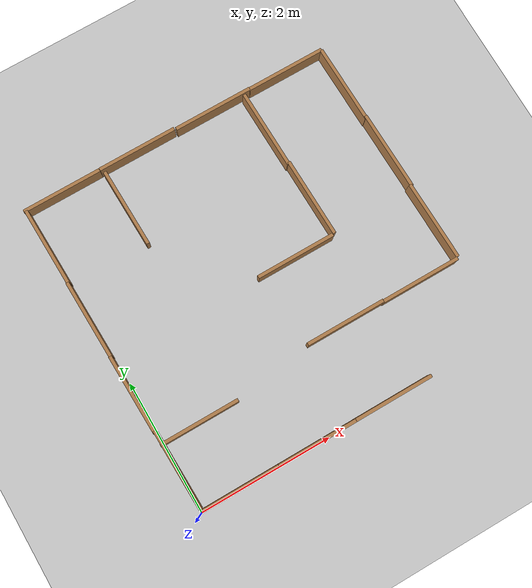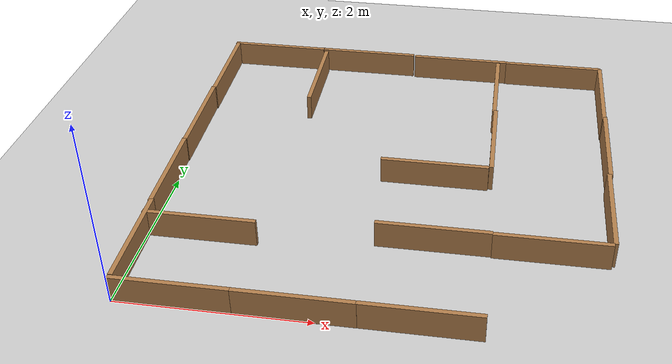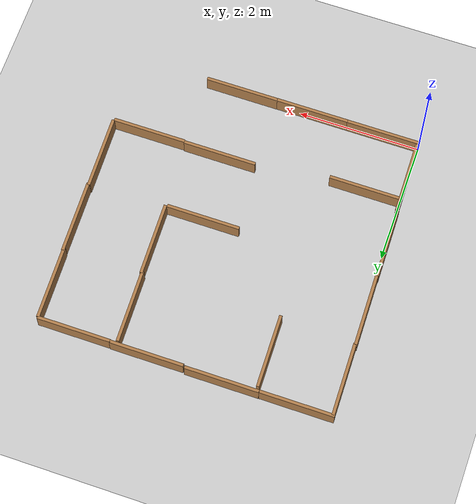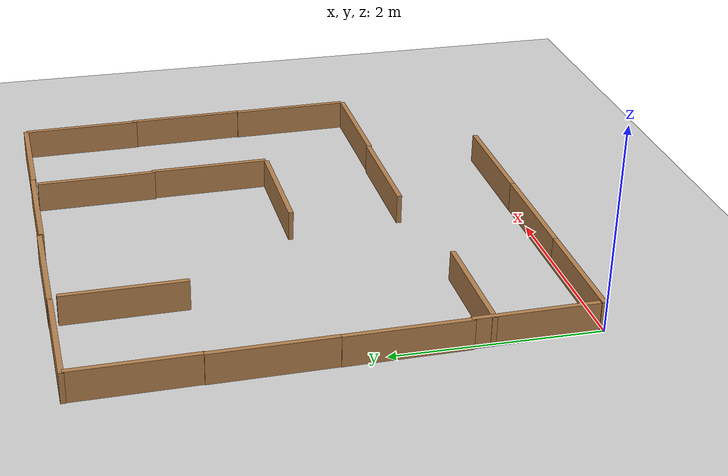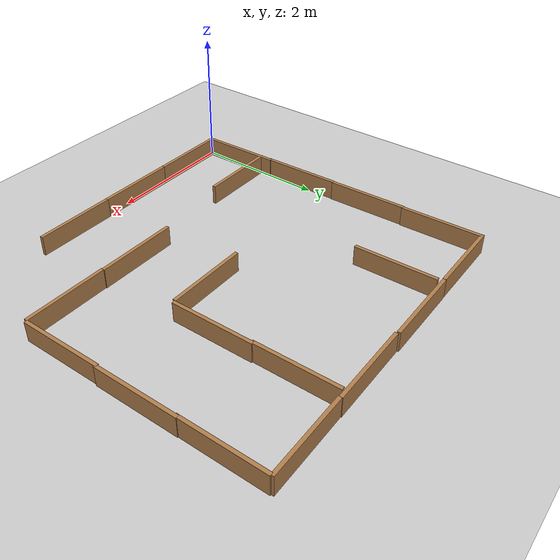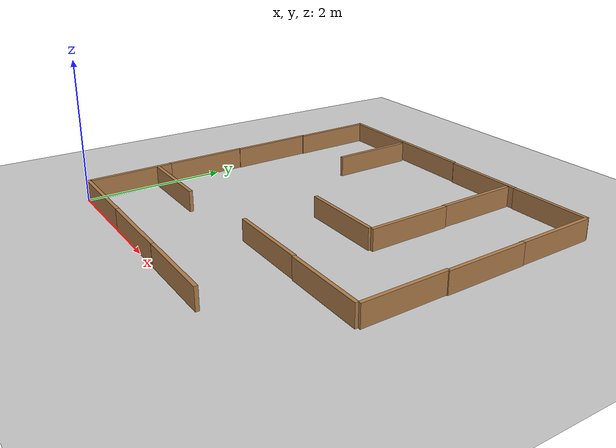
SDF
<sdf version="1.7">
 <world name="default">
  <light name="sun" type="directional">
   <pose>0 0 10 0 -0 0</pose>
   <diffuse>0.8 0.8 0.8 1</diffuse>
   <specular>0.2 0.2 0.2 1</specular>
   <attenuation>
    <range>1000</range>
    <constant>0.9</constant>
    <linear>0.01</linear>
    <quadratic>0.001</quadratic>
   </attenuation>
   <direction>-0.5 0.1 -0.9</direction>
   <spot><inner_angle>0</inner_angle><outer_angle>0</outer_angle><falloff>0</falloff></spot>
  </light>
  <model name="ground_plane">
   <static>1</static>
   <link name="link">
    <collision name="collision">
     <geometry><plane><normal>0 0 1</normal><size>100 100</size></plane></geometry>
     <surface>
      <contact><collide_bitmask>65535</collide_bitmask></contact>
      <friction><ode><mu>100</mu><mu2>50</mu2></ode></friction>
     </surface>
    </collision>
    <visual name="visual">
     <cast_shadows>0</cast_shadows>
     <geometry><plane><normal>0 0 1</normal><size>100 100</size></plane></geometry>
     <material>
      <script><uri>file://media/materials/scripts/gazebo.material</uri><name>Gazebo/Grey</name></script>
     </material>
    </visual>
   </link>
  </model>
  <gravity>0 0 -9.8</gravity>
  <magnetic_field>6e-06 2.3e-05 -4.2e-05</magnetic_field>
  <atmosphere type="adiabatic"/>
  <physics type="ode">
   <max_step_size>0.001</max_step_size>
   <real_time_factor>1</real_time_factor>
   <real_time_update_rate>1000</real_time_update_rate>
  </physics>
  <scene><ambient>0.4 0.4 0.4 1</ambient><background>0.7 0.7 0.7 1</background><shadows>1</shadows></scene>
  <audio><device>default</device></audio>
  <spherical_coordinates>
   <surface_model>EARTH_WGS84</surface_model>
   <latitude_deg>0</latitude_deg>
   <longitude_deg>0</longitude_deg>
   <elevation>0</elevation>
   <heading_deg>0</heading_deg>
  </spherical_coordinates>
  <model name="wall120cm">
   <pose>0.603908 0.022287 0 0 -0 0</pose>
   <link name="Wall_11">
    <collision name="Wall_11_Collision">
     <geometry><box><size>1.2 0.05 0.3</size></box></geometry>
     <pose>0 0 0.15 0 -0 0</pose>
    </collision>
    <visual name="Wall_11_Visual">
     <pose>0 0 0.15 0 -0 0</pose>
     <geometry><box><size>1.2 0.05 0.3</size></box></geometry>
     <material>
      <script><uri>file://media/materials/scripts/gazebo.material</uri><name>Gazebo/Wood</name></script>
      <ambient>1 1 1 1</ambient>
     </material>
     <meta><layer>0</layer></meta>
    </visual>
   </link>
   <static>1</static>
  </model>
  <model name="wall120cm_0">
   <pose>1.7991 0.021891 0 0 -0 0</pose>
   <link name="Wall_11">
    <collision name="Wall_11_Collision">
     <geometry><box><size>1.2 0.05 0.3</size></box></geometry>
     <pose>0 0 0.15 0 -0 0</pose>
    </collision>
    <visual name="Wall_11_Visual">
     <pose>0 0 0.15 0 -0 0</pose>
     <geometry><box><size>1.2 0.05 0.3</size></box></geometry>
     <material>
      <script><uri>file://media/materials/scripts/gazebo.material</uri><name>Gazebo/Wood</name></script>
      <ambient>1 1 1 1</ambient>
     </material>
     <meta><layer>0</layer></meta>
    </visual>
   </link>
   <static>1</static>
  </model>
  <model name="wall120cm_1">
   <pose>2.99015 0.023036 0 0 -0 0</pose>
   <link name="Wall_11">
    <collision name="Wall_11_Collision">
     <geometry><box><size>1.2 0.05 0.3</size></box></geometry>
     <pose>0 0 0.15 0 -0 0</pose>
    </collision>
    <visual name="Wall_11_Visual">
     <pose>0 0 0.15 0 -0 0</pose>
     <geometry><box><size>1.2 0.05 0.3</size></box></geometry>
     <material>
      <script><uri>file://media/materials/scripts/gazebo.material</uri><name>Gazebo/Wood</name></script>
      <ambient>1 1 1 1</ambient>
     </material>
     <meta><layer>0</layer></meta>
    </visual>
   </link>
   <static>1</static>
  </model>
  <model name="wall120cm_2">
   <pose>2.96305 1.22257 0 0 -0 0</pose>
   <link name="Wall_11">
    <collision name="Wall_11_Collision">
     <geometry><box><size>1.2 0.05 0.3</size></box></geometry>
     <pose>0 0 0.15 0 -0 0</pose>
    </collision>
    <visual name="Wall_11_Visual">
     <pose>0 0 0.15 0 -0 0</pose>
     <geometry><box><size>1.2 0.05 0.3</size></box></geometry>
     <material>
      <script><uri>file://media/materials/scripts/gazebo.material</uri><name>Gazebo/Wood</name></script>
      <ambient>1 1 1 1</ambient>
     </material>
     <meta><layer>0</layer></meta>
    </visual>
   </link>
   <static>1</static>
  </model>
  <model name="wall120cm_1_clone">
   <pose>0.006117 0.654339 0 0.012369 -0.001594 1.59387</pose>
   <link name="Wall_11">
    <collision name="Wall_11_Collision">
     <geometry><box><size>1.2 0.05 0.3</size></box></geometry>
     <pose>0 0 0.15 0 -0 0</pose>
    </collision>
    <visual name="Wall_11_Visual">
     <pose>0 0 0.15 0 -0 0</pose>
     <geometry><box><size>1.2 0.05 0.3</size></box></geometry>
     <material>
      <script><uri>file://media/materials/scripts/gazebo.material</uri><name>Gazebo/Wood</name></script>
      <ambient>1 1 1 1</ambient>
     </material>
     <meta><layer>0</layer></meta>
    </visual>
   </link>
   <static>1</static>
  </model>
  <model name="wall120cm_1_clone_0">
   <pose>-0.030967 1.82256 0 0.012369 -0.001594 1.59387</pose>
   <link name="Wall_11">
    <collision name="Wall_11_Collision">
     <geometry><box><size>1.2 0.05 0.3</size></box></geometry>
     <pose>0 0 0.15 0 -0 0</pose>
    </collision>
    <visual name="Wall_11_Visual">
     <pose>0 0 0.15 0 -0 0</pose>
     <geometry><box><size>1.2 0.05 0.3</size></box></geometry>
     <material>
      <script><uri>file://media/materials/scripts/gazebo.material</uri><name>Gazebo/Wood</name></script>
      <ambient>1 1 1 1</ambient>
     </material>
     <meta><layer>0</layer></meta>
    </visual>
   </link>
   <static>1</static>
  </model>
  <model name="wall120cm_1_clone_1">
   <pose>-0.051854 3.00789 0 0.012369 -0.001594 1.59387</pose>
   <link name="Wall_11">
    <collision name="Wall_11_Collision">
     <geometry><box><size>1.2 0.05 0.3</size></box></geometry>
     <pose>0 0 0.15 0 -0 0</pose>
    </collision>
    <visual name="Wall_11_Visual">
     <pose>0 0 0.15 0 -0 0</pose>
     <geometry><box><size>1.2 0.05 0.3</size></box></geometry>
     <material>
      <script><uri>file://media/materials/scripts/gazebo.material</uri><name>Gazebo/Wood</name></script>
      <ambient>1 1 1 1</ambient>
     </material>
     <meta><layer>0</layer></meta>
    </visual>
   </link>
   <static>1</static>
  </model>
  <model name="wall120cm_1_clone_2">
   <pose>-0.069005 4.18736 0 0.012369 -0.001594 1.59387</pose>
   <link name="Wall_11">
    <collision name="Wall_11_Collision">
     <geometry><box><size>1.2 0.05 0.3</size></box></geometry>
     <pose>0 0 0.15 0 -0 0</pose>
    </collision>
    <visual name="Wall_11_Visual">
     <pose>0 0 0.15 0 -0 0</pose>
     <geometry><box><size>1.2 0.05 0.3</size></box></geometry>
     <material>
      <script><uri>file://media/materials/scripts/gazebo.material</uri><name>Gazebo/Wood</name></script>
      <ambient>1 1 1 1</ambient>
     </material>
     <meta><layer>0</layer></meta>
    </visual>
   </link>
   <static>1</static>
  </model>
  <model name="wall120cm_3">
   <pose>0.489509 4.79403 0 0 -0 0</pose>
   <link name="Wall_11">
    <collision name="Wall_11_Collision">
     <geometry><box><size>1.2 0.05 0.3</size></box></geometry>
     <pose>0 0 0.15 0 -0 0</pose>
    </collision>
    <visual name="Wall_11_Visual">
     <pose>0 0 0.15 0 -0 0</pose>
     <geometry><box><size>1.2 0.05 0.3</size></box></geometry>
     <material>
      <script><uri>file://media/materials/scripts/gazebo.material</uri><name>Gazebo/Wood</name></script>
      <ambient>1 1 1 1</ambient>
     </material>
     <meta><layer>0</layer></meta>
    </visual>
   </link>
   <static>1</static>
  </model>
  <model name="wall120cm_2_clone">
   <pose>4.16049 1.21107 0 0 -0 0</pose>
   <link name="Wall_11">
    <collision name="Wall_11_Collision">
     <geometry><box><size>1.2 0.05 0.3</size></box></geometry>
     <pose>0 0 0.15 0 -0 0</pose>
    </collision>
    <visual name="Wall_11_Visual">
     <pose>0 0 0.15 0 -0 0</pose>
     <geometry><box><size>1.2 0.05 0.3</size></box></geometry>
     <material>
      <script><uri>file://media/materials/scripts/gazebo.material</uri><name>Gazebo/Wood</name></script>
      <ambient>1 1 1 1</ambient>
     </material>
     <meta><layer>0</layer></meta>
    </visual>
   </link>
   <static>1</static>
  </model>
  <model name="wall120cm_1_clone_clone">
   <pose>4.75634 1.82838 0 0.012369 -0.001594 1.59387</pose>
   <link name="Wall_11">
    <collision name="Wall_11_Collision">
     <geometry><box><size>1.2 0.05 0.3</size></box></geometry>
     <pose>0 0 0.15 0 -0 0</pose>
    </collision>
    <visual name="Wall_11_Visual">
     <pose>0 0 0.15 0 -0 0</pose>
     <geometry><box><size>1.2 0.05 0.3</size></box></geometry>
     <material>
      <script><uri>file://media/materials/scripts/gazebo.material</uri><name>Gazebo/Wood</name></script>
      <ambient>1 1 1 1</ambient>
     </material>
     <meta><layer>0</layer></meta>
    </visual>
   </link>
   <static>1</static>
  </model>
  <model name="wall120cm_1_clone_clone_0">
   <pose>4.7437 3.0048 0 0.012369 -0.001594 1.59387</pose>
   <link name="Wall_11">
    <collision name="Wall_11_Collision">
     <geometry><box><size>1.2 0.05 0.3</size></box></geometry>
     <pose>0 0 0.15 0 -0 0</pose>
    </collision>
    <visual name="Wall_11_Visual">
     <pose>0 0 0.15 0 -0 0</pose>
     <geometry><box><size>1.2 0.05 0.3</size></box></geometry>
     <material>
      <script><uri>file://media/materials/scripts/gazebo.material</uri><name>Gazebo/Wood</name></script>
      <ambient>1 1 1 1</ambient>
     </material>
     <meta><layer>0</layer></meta>
    </visual>
   </link>
   <static>1</static>
  </model>
  <model name="wall120cm_4">
   <pose>1.69319 4.79737 0 0 -0 0</pose>
   <link name="Wall_11">
    <collision name="Wall_11_Collision">
     <geometry><box><size>1.2 0.05 0.3</size></box></geometry>
     <pose>0 0 0.15 0 -0 0</pose>
    </collision>
    <visual name="Wall_11_Visual">
     <pose>0 0 0.15 0 -0 0</pose>
     <geometry><box><size>1.2 0.05 0.3</size></box></geometry>
     <material>
      <script><uri>file://media/materials/scripts/gazebo.material</uri><name>Gazebo/Wood</name></script>
      <ambient>1 1 1 1</ambient>
     </material>
     <meta><layer>0</layer></meta>
    </visual>
   </link>
   <static>1</static>
  </model>
  <model name="wall120cm_5">
   <pose>2.91488 4.77999 0 0 -0 0</pose>
   <link name="Wall_11">
    <collision name="Wall_11_Collision">
     <geometry><box><size>1.2 0.05 0.3</size></box></geometry>
     <pose>0 0 0.15 0 -0 0</pose>
    </collision>
    <visual name="Wall_11_Visual">
     <pose>0 0 0.15 0 -0 0</pose>
     <geometry><box><size>1.2 0.05 0.3</size></box></geometry>
     <material>
      <script><uri>file://media/materials/scripts/gazebo.material</uri><name>Gazebo/Wood</name></script>
      <ambient>1 1 1 1</ambient>
     </material>
     <meta><layer>0</layer></meta>
    </visual>
   </link>
   <static>1</static>
  </model>
  <model name="wall120cm_6">
   <pose>4.10416 4.77273 0 0 -0 0</pose>
   <link name="Wall_11">
    <collision name="Wall_11_Collision">
     <geometry><box><size>1.2 0.05 0.3</size></box></geometry>
     <pose>0 0 0.15 0 -0 0</pose>
    </collision>
    <visual name="Wall_11_Visual">
     <pose>0 0 0.15 0 -0 0</pose>
     <geometry><box><size>1.2 0.05 0.3</size></box></geometry>
     <material>
      <script><uri>file://media/materials/scripts/gazebo.material</uri><name>Gazebo/Wood</name></script>
      <ambient>1 1 1 1</ambient>
     </material>
     <meta><layer>0</layer></meta>
    </visual>
   </link>
   <static>1</static>
  </model>
  <model name="wall120cm_1_clone_clone_1">
   <pose>4.70848 4.16397 0 0.012369 -0.001594 1.59387</pose>
   <link name="Wall_11">
    <collision name="Wall_11_Collision">
     <geometry><box><size>1.2 0.05 0.3</size></box></geometry>
     <pose>0 0 0.15 0 -0 0</pose>
    </collision>
    <visual name="Wall_11_Visual">
     <pose>0 0 0.15 0 -0 0</pose>
     <geometry><box><size>1.2 0.05 0.3</size></box></geometry>
     <material>
      <script><uri>file://media/materials/scripts/gazebo.material</uri><name>Gazebo/Wood</name></script>
      <ambient>1 1 1 1</ambient>
     </material>
     <meta><layer>0</layer></meta>
    </visual>
   </link>
   <static>1</static>
  </model>
  <model name="wall120cm_1_clone_clone_2">
   <pose>3.41281 4.13868 0 0.012369 -0.001594 1.59387</pose>
   <link name="Wall_11">
    <collision name="Wall_11_Collision">
     <geometry><box><size>1.2 0.05 0.3</size></box></geometry>
     <pose>0 0 0.15 0 -0 0</pose>
    </collision>
    <visual name="Wall_11_Visual">
     <pose>0 0 0.15 0 -0 0</pose>
     <geometry><box><size>1.2 0.05 0.3</size></box></geometry>
     <material>
      <script><uri>file://media/materials/scripts/gazebo.material</uri><name>Gazebo/Wood</name></script>
      <ambient>1 1 1 1</ambient>
     </material>
     <meta><layer>0</layer></meta>
    </visual>
   </link>
   <static>1</static>
  </model>
  <model name="wall120cm_1_clone_clone_3">
   <pose>3.45607 2.96549 0 0.012369 -0.001594 1.59387</pose>
   <link name="Wall_11">
    <collision name="Wall_11_Collision">
     <geometry><box><size>1.2 0.05 0.3</size></box></geometry>
     <pose>0 0 0.15 0 -0 0</pose>
    </collision>
    <visual name="Wall_11_Visual">
     <pose>0 0 0.15 0 -0 0</pose>
     <geometry><box><size>1.2 0.05 0.3</size></box></geometry>
     <material>
      <script><uri>file://media/materials/scripts/gazebo.material</uri><name>Gazebo/Wood</name></script>
      <ambient>1 1 1 1</ambient>
     </material>
     <meta><layer>0</layer></meta>
    </visual>
   </link>
   <static>1</static>
  </model>
  <model name="wall120cm_7">
   <pose>2.84547 2.35947 0 0 -0 0</pose>
   <link name="Wall_11">
    <collision name="Wall_11_Collision">
     <geometry><box><size>1.2 0.05 0.3</size></box></geometry>
     <pose>0 0 0.15 0 -0 0</pose>
    </collision>
    <visual name="Wall_11_Visual">
     <pose>0 0 0.15 0 -0 0</pose>
     <geometry><box><size>1.2 0.05 0.3</size></box></geometry>
     <material>
      <script><uri>file://media/materials/scripts/gazebo.material</uri><name>Gazebo/Wood</name></script>
      <ambient>1 1 1 1</ambient>
     </material>
     <meta><layer>0</layer></meta>
    </visual>
   </link>
   <static>1</static>
  </model>
  <model name="wall120cm_1_clone_clone_4">
   <pose>1.14873 4.13125 0 0.012369 -0.001594 1.59387</pose>
   <link name="Wall_11">
    <collision name="Wall_11_Collision">
     <geometry><box><size>1.2 0.05 0.3</size></box></geometry>
     <pose>0 0 0.15 0 -0 0</pose>
    </collision>
    <visual name="Wall_11_Visual">
     <pose>0 0 0.15 0 -0 0</pose>
     <geometry><box><size>1.2 0.05 0.3</size></box></geometry>
     <material>
      <script><uri>file://media/materials/scripts/gazebo.material</uri><name>Gazebo/Wood</name></script>
      <ambient>1 1 1 1</ambient>
     </material>
     <meta><layer>0</layer></meta>
    </visual>
   </link>
   <static>1</static>
  </model>
  <model name="wall120cm_8">
   <pose>0.570738 1.04851 0 0 -0 0</pose>
   <link name="Wall_11">
    <collision name="Wall_11_Collision">
     <geometry><box><size>1.2 0.05 0.3</size></box></geometry>
     <pose>0 0 0.15 0 -0 0</pose>
    </collision>
    <visual name="Wall_11_Visual">
     <pose>0 0 0.15 0 -0 0</pose>
     <geometry><box><size>1.2 0.05 0.3</size></box></geometry>
     <material>
      <script><uri>file://media/materials/scripts/gazebo.material</uri><name>Gazebo/Wood</name></script>
      <ambient>1 1 1 1</ambient>
     </material>
     <meta><layer>0</layer></meta>
    </visual>
   </link>
   <static>1</static>
  </model>
 </world>
</sdf>
